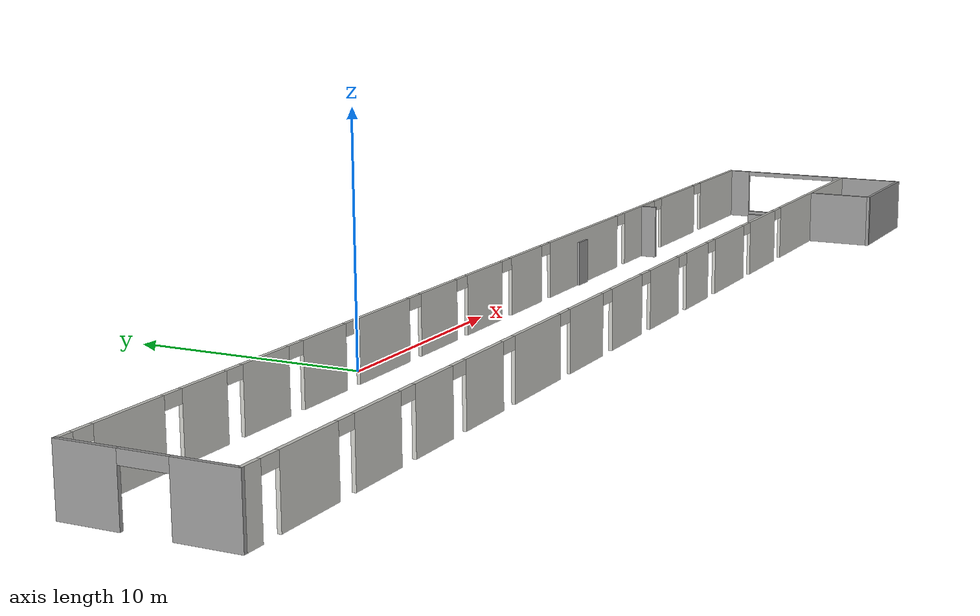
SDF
<?xml version='1.0'?>
<sdf version='1.7'>
  <model name='Pasillo_Telematica'>
    <pose>10.2077 -5.2353 0 0 -0 0</pose>
    <link name='Door_14'>
      <collision name='Door_14_Collision'>
        <geometry>
          <box>
            <size>0.9 0.17 2</size>
          </box>
        </geometry>
        <pose>0 0 1 0 -0 0</pose>
      </collision>
      <visual name='Door_14_Visual'>
        <pose>0 0 1 0 -0 0</pose>
        <geometry>
          <box>
            <size>0.9 0.17 2</size>
          </box>
        </geometry>
        <material>
          <script>
            <uri>file://media/materials/scripts/gazebo.material</uri>
            <name>Gazebo/Grey</name>
          </script>
        </material>
      </visual>
      <pose>7.85321 4.19096 0 0 -0 0</pose>
    </link>
    <link name='Wall_13'>
      <collision name='Wall_13_Collision'>
        <geometry>
          <box>
            <size>0.75 0.15 2.5</size>
          </box>
        </geometry>
        <pose>0 0 1.25 0 -0 0</pose>
      </collision>
      <visual name='Wall_13_Visual'>
        <pose>0 0 1.25 0 -0 0</pose>
        <geometry>
          <box>
            <size>0.75 0.15 2.5</size>
          </box>
        </geometry>
        <material>
          <script>
            <uri>file://media/materials/scripts/gazebo.material</uri>
            <name>Gazebo/Grey</name>
          </script>
          <ambient>1 1 1 1</ambient>
        </material>
        <meta>
          <layer>0</layer>
        </meta>
      </visual>
      <pose>15.2075 -1.6766 0 0 -0 1.5708</pose>
    </link>
    <link name='Wall_23'>
      <collision name='Wall_23_Collision'>
        <geometry>
          <box>
            <size>3.25 0.15 2.5</size>
          </box>
        </geometry>
        <pose>0 0 1.25 0 -0 0</pose>
      </collision>
      <visual name='Wall_23_Visual'>
        <pose>0 0 1.25 0 -0 0</pose>
        <geometry>
          <box>
            <size>3.25 0.15 2.5</size>
          </box>
        </geometry>
        <material>
          <script>
            <uri>file://media/materials/scripts/gazebo.material</uri>
            <name>Gazebo/Grey</name>
          </script>
          <ambient>1 1 1 1</ambient>
        </material>
        <meta>
          <layer>0</layer>
        </meta>
      </visual>
      <pose>28.175 -3.6103 0 0 -0 -1.5708</pose>
    </link>
    <link name='Wall_24'>
      <collision name='Wall_24_Collision'>
        <geometry>
          <box>
            <size>5.75 0.15 2.5</size>
          </box>
        </geometry>
        <pose>0 0 1.25 0 -0 0</pose>
      </collision>
      <visual name='Wall_24_Visual'>
        <pose>0 0 1.25 0 -0 0</pose>
        <geometry>
          <box>
            <size>5.75 0.15 2.5</size>
          </box>
        </geometry>
        <material>
          <script>
            <uri>file://media/materials/scripts/gazebo.material</uri>
            <name>Gazebo/Grey</name>
          </script>
          <ambient>1 1 1 1</ambient>
        </material>
        <meta>
          <layer>0</layer>
        </meta>
      </visual>
      <pose>25.375 -5.1603 0 0 -0 3.14159</pose>
    </link>
    <link name='Wall_25'>
      <collision name='Wall_25_Collision'>
        <geometry>
          <box>
            <size>3.25 0.15 2.5</size>
          </box>
        </geometry>
        <pose>0 0 1.25 0 -0 0</pose>
      </collision>
      <visual name='Wall_25_Visual'>
        <pose>0 0 1.25 0 -0 0</pose>
        <geometry>
          <box>
            <size>3.25 0.15 2.5</size>
          </box>
        </geometry>
        <material>
          <script>
            <uri>file://media/materials/scripts/gazebo.material</uri>
            <name>Gazebo/Grey</name>
          </script>
          <ambient>1 1 1 1</ambient>
        </material>
        <meta>
          <layer>0</layer>
        </meta>
      </visual>
      <pose>22.575 -3.6103 0 0 -0 1.5708</pose>
    </link>
    <link name='Wall_3'>
      <pose>-1e-06 -2.0603 0 0 -0 0</pose>
      <visual name='Wall_3_Visual_0'>
        <pose>-27.785 0 1.25 0 -0 0</pose>
        <geometry>
          <box>
            <size>0.929953 0.15 2.5</size>
          </box>
        </geometry>
        <material>
          <script>
            <uri>file://media/materials/scripts/gazebo.material</uri>
            <name>Gazebo/CeilingTiled</name>
          </script>
          <ambient>1 1 1 1</ambient>
        </material>
        <meta>
          <layer>0</layer>
        </meta>
      </visual>
      <collision name='Wall_3_Collision_0'>
        <geometry>
          <box>
            <size>0.929953 0.15 2.5</size>
          </box>
        </geometry>
        <pose>-27.785 0 1.25 0 -0 0</pose>
      </collision>
      <visual name='Wall_3_Visual_1'>
        <pose>-24.8637 0 1.25 0 -0 0</pose>
        <geometry>
          <box>
            <size>3.11269 0.15 2.5</size>
          </box>
        </geometry>
        <material>
          <script>
            <uri>file://media/materials/scripts/gazebo.material</uri>
            <name>Gazebo/CeilingTiled</name>
          </script>
          <ambient>1 1 1 1</ambient>
        </material>
        <meta>
          <layer>0</layer>
        </meta>
      </visual>
      <collision name='Wall_3_Collision_1'>
        <geometry>
          <box>
            <size>3.11269 0.15 2.5</size>
          </box>
        </geometry>
        <pose>-24.8637 0 1.25 0 -0 0</pose>
      </collision>
      <visual name='Wall_3_Visual_2'>
        <pose>-21.0249 0 1.25 0 -0 0</pose>
        <geometry>
          <box>
            <size>2.76492 0.15 2.5</size>
          </box>
        </geometry>
        <material>
          <script>
            <uri>file://media/materials/scripts/gazebo.material</uri>
            <name>Gazebo/CeilingTiled</name>
          </script>
          <ambient>1 1 1 1</ambient>
        </material>
        <meta>
          <layer>0</layer>
        </meta>
      </visual>
      <collision name='Wall_3_Collision_2'>
        <geometry>
          <box>
            <size>2.76492 0.15 2.5</size>
          </box>
        </geometry>
        <pose>-21.0249 0 1.25 0 -0 0</pose>
      </collision>
      <visual name='Wall_3_Visual_3'>
        <pose>-17.4937 0 1.25 0 -0 0</pose>
        <geometry>
          <box>
            <size>2.49741 0.15 2.5</size>
          </box>
        </geometry>
        <material>
          <script>
            <uri>file://media/materials/scripts/gazebo.material</uri>
            <name>Gazebo/CeilingTiled</name>
          </script>
          <ambient>1 1 1 1</ambient>
        </material>
        <meta>
          <layer>0</layer>
        </meta>
      </visual>
      <collision name='Wall_3_Collision_3'>
        <geometry>
          <box>
            <size>2.49741 0.15 2.5</size>
          </box>
        </geometry>
        <pose>-17.4937 0 1.25 0 -0 0</pose>
      </collision>
      <visual name='Wall_3_Visual_4'>
        <pose>-13.9626 0 1.25 0 -0 0</pose>
        <geometry>
          <box>
            <size>2.76492 0.15 2.5</size>
          </box>
        </geometry>
        <material>
          <script>
            <uri>file://media/materials/scripts/gazebo.material</uri>
            <name>Gazebo/CeilingTiled</name>
          </script>
          <ambient>1 1 1 1</ambient>
        </material>
        <meta>
          <layer>0</layer>
        </meta>
      </visual>
      <collision name='Wall_3_Collision_4'>
        <geometry>
          <box>
            <size>2.76492 0.15 2.5</size>
          </box>
        </geometry>
        <pose>-13.9626 0 1.25 0 -0 0</pose>
      </collision>
      <visual name='Wall_3_Visual_5'>
        <pose>-9.81612 0 1.25 0 -0 0</pose>
        <geometry>
          <box>
            <size>3.72797 0.15 2.5</size>
          </box>
        </geometry>
        <material>
          <script>
            <uri>file://media/materials/scripts/gazebo.material</uri>
            <name>Gazebo/CeilingTiled</name>
          </script>
          <ambient>1 1 1 1</ambient>
        </material>
        <meta>
          <layer>0</layer>
        </meta>
      </visual>
      <collision name='Wall_3_Collision_5'>
        <geometry>
          <box>
            <size>3.72797 0.15 2.5</size>
          </box>
        </geometry>
        <pose>-9.81612 0 1.25 0 -0 0</pose>
      </collision>
      <visual name='Wall_3_Visual_6'>
        <pose>-5.5493 0 1.25 0 -0 0</pose>
        <geometry>
          <box>
            <size>3.00568 0.15 2.5</size>
          </box>
        </geometry>
        <material>
          <script>
            <uri>file://media/materials/scripts/gazebo.material</uri>
            <name>Gazebo/CeilingTiled</name>
          </script>
          <ambient>1 1 1 1</ambient>
        </material>
        <meta>
          <layer>0</layer>
        </meta>
      </visual>
      <collision name='Wall_3_Collision_6'>
        <geometry>
          <box>
            <size>3.00568 0.15 2.5</size>
          </box>
        </geometry>
        <pose>-5.5493 0 1.25 0 -0 0</pose>
      </collision>
      <visual name='Wall_3_Visual_7'>
        <pose>-1.63024 0 1.25 0 -0 0</pose>
        <geometry>
          <box>
            <size>3.03243 0.15 2.5</size>
          </box>
        </geometry>
        <material>
          <script>
            <uri>file://media/materials/scripts/gazebo.material</uri>
            <name>Gazebo/CeilingTiled</name>
          </script>
          <ambient>1 1 1 1</ambient>
        </material>
        <meta>
          <layer>0</layer>
        </meta>
      </visual>
      <collision name='Wall_3_Collision_7'>
        <geometry>
          <box>
            <size>3.03243 0.15 2.5</size>
          </box>
        </geometry>
        <pose>-1.63024 0 1.25 0 -0 0</pose>
      </collision>
      <visual name='Wall_3_Visual_8'>
        <pose>2.36907 0 1.25 0 -0 0</pose>
        <geometry>
          <box>
            <size>3.16619 0.15 2.5</size>
          </box>
        </geometry>
        <material>
          <script>
            <uri>file://media/materials/scripts/gazebo.material</uri>
            <name>Gazebo/CeilingTiled</name>
          </script>
          <ambient>1 1 1 1</ambient>
        </material>
        <meta>
          <layer>0</layer>
        </meta>
      </visual>
      <collision name='Wall_3_Collision_8'>
        <geometry>
          <box>
            <size>3.16619 0.15 2.5</size>
          </box>
        </geometry>
        <pose>2.36907 0 1.25 0 -0 0</pose>
      </collision>
      <visual name='Wall_3_Visual_9'>
        <pose>6.18112 0 1.25 0 -0 0</pose>
        <geometry>
          <box>
            <size>2.65792 0.15 2.5</size>
          </box>
        </geometry>
        <material>
          <script>
            <uri>file://media/materials/scripts/gazebo.material</uri>
            <name>Gazebo/CeilingTiled</name>
          </script>
          <ambient>1 1 1 1</ambient>
        </material>
        <meta>
          <layer>0</layer>
        </meta>
      </visual>
      <collision name='Wall_3_Collision_9'>
        <geometry>
          <box>
            <size>2.65792 0.15 2.5</size>
          </box>
        </geometry>
        <pose>6.18112 0 1.25 0 -0 0</pose>
      </collision>
      <visual name='Wall_3_Visual_10'>
        <pose>10.3098 0 1.25 0 -0 0</pose>
        <geometry>
          <box>
            <size>3.7995 0.15 2.5</size>
          </box>
        </geometry>
        <material>
          <script>
            <uri>file://media/materials/scripts/gazebo.material</uri>
            <name>Gazebo/CeilingTiled</name>
          </script>
          <ambient>1 1 1 1</ambient>
        </material>
        <meta>
          <layer>0</layer>
        </meta>
      </visual>
      <collision name='Wall_3_Collision_10'>
        <geometry>
          <box>
            <size>3.7995 0.15 2.5</size>
          </box>
        </geometry>
        <pose>10.3098 0 1.25 0 -0 0</pose>
      </collision>
      <visual name='Wall_3_Visual_11'>
        <pose>14.8973 0 1.25 0 -0 0</pose>
        <geometry>
          <box>
            <size>3.57538 0.15 2.5</size>
          </box>
        </geometry>
        <material>
          <script>
            <uri>file://media/materials/scripts/gazebo.material</uri>
            <name>Gazebo/CeilingTiled</name>
          </script>
          <ambient>1 1 1 1</ambient>
        </material>
        <meta>
          <layer>0</layer>
        </meta>
      </visual>
      <collision name='Wall_3_Collision_11'>
        <geometry>
          <box>
            <size>3.57538 0.15 2.5</size>
          </box>
        </geometry>
        <pose>14.8973 0 1.25 0 -0 0</pose>
      </collision>
      <visual name='Wall_3_Visual_12'>
        <pose>22.9175 0 1.25 0 -0 0</pose>
        <geometry>
          <box>
            <size>10.665 0.15 2.5</size>
          </box>
        </geometry>
        <material>
          <script>
            <uri>file://media/materials/scripts/gazebo.material</uri>
            <name>Gazebo/CeilingTiled</name>
          </script>
          <ambient>1 1 1 1</ambient>
        </material>
        <meta>
          <layer>0</layer>
        </meta>
      </visual>
      <collision name='Wall_3_Collision_12'>
        <geometry>
          <box>
            <size>10.665 0.15 2.5</size>
          </box>
        </geometry>
        <pose>22.9175 0 1.25 0 -0 0</pose>
      </collision>
      <visual name='Wall_3_Visual_13'>
        <pose>-26.87 0 2.25 0 -0 0</pose>
        <geometry>
          <box>
            <size>0.9 0.15 0.5</size>
          </box>
        </geometry>
        <material>
          <script>
            <uri>file://media/materials/scripts/gazebo.material</uri>
            <name>Gazebo/CeilingTiled</name>
          </script>
          <ambient>1 1 1 1</ambient>
        </material>
        <meta>
          <layer>0</layer>
        </meta>
      </visual>
      <collision name='Wall_3_Collision_13'>
        <geometry>
          <box>
            <size>0.9 0.15 0.5</size>
          </box>
        </geometry>
        <pose>-26.87 0 2.25 0 -0 0</pose>
      </collision>
      <visual name='Wall_3_Visual_14'>
        <pose>-22.8574 0 2.25 0 -0 0</pose>
        <geometry>
          <box>
            <size>0.9 0.15 0.5</size>
          </box>
        </geometry>
        <material>
          <script>
            <uri>file://media/materials/scripts/gazebo.material</uri>
            <name>Gazebo/CeilingTiled</name>
          </script>
          <ambient>1 1 1 1</ambient>
        </material>
        <meta>
          <layer>0</layer>
        </meta>
      </visual>
      <collision name='Wall_3_Collision_14'>
        <geometry>
          <box>
            <size>0.9 0.15 0.5</size>
          </box>
        </geometry>
        <pose>-22.8574 0 2.25 0 -0 0</pose>
      </collision>
      <visual name='Wall_3_Visual_15'>
        <pose>-19.1924 0 2.25 0 -0 0</pose>
        <geometry>
          <box>
            <size>0.9 0.15 0.5</size>
          </box>
        </geometry>
        <material>
          <script>
            <uri>file://media/materials/scripts/gazebo.material</uri>
            <name>Gazebo/CeilingTiled</name>
          </script>
          <ambient>1 1 1 1</ambient>
        </material>
        <meta>
          <layer>0</layer>
        </meta>
      </visual>
      <collision name='Wall_3_Collision_15'>
        <geometry>
          <box>
            <size>0.9 0.15 0.5</size>
          </box>
        </geometry>
        <pose>-19.1924 0 2.25 0 -0 0</pose>
      </collision>
      <visual name='Wall_3_Visual_16'>
        <pose>-15.795 0 2.25 0 -0 0</pose>
        <geometry>
          <box>
            <size>0.9 0.15 0.5</size>
          </box>
        </geometry>
        <material>
          <script>
            <uri>file://media/materials/scripts/gazebo.material</uri>
            <name>Gazebo/CeilingTiled</name>
          </script>
          <ambient>1 1 1 1</ambient>
        </material>
        <meta>
          <layer>0</layer>
        </meta>
      </visual>
      <collision name='Wall_3_Collision_16'>
        <geometry>
          <box>
            <size>0.9 0.15 0.5</size>
          </box>
        </geometry>
        <pose>-15.795 0 2.25 0 -0 0</pose>
      </collision>
      <visual name='Wall_3_Visual_17'>
        <pose>-12.1301 0 2.25 0 -0 0</pose>
        <geometry>
          <box>
            <size>0.9 0.15 0.5</size>
          </box>
        </geometry>
        <material>
          <script>
            <uri>file://media/materials/scripts/gazebo.material</uri>
            <name>Gazebo/CeilingTiled</name>
          </script>
          <ambient>1 1 1 1</ambient>
        </material>
        <meta>
          <layer>0</layer>
        </meta>
      </visual>
      <collision name='Wall_3_Collision_17'>
        <geometry>
          <box>
            <size>0.9 0.15 0.5</size>
          </box>
        </geometry>
        <pose>-12.1301 0 2.25 0 -0 0</pose>
      </collision>
      <visual name='Wall_3_Visual_18'>
        <pose>-7.50214 0 2.25 0 -0 0</pose>
        <geometry>
          <box>
            <size>0.9 0.15 0.5</size>
          </box>
        </geometry>
        <material>
          <script>
            <uri>file://media/materials/scripts/gazebo.material</uri>
            <name>Gazebo/CeilingTiled</name>
          </script>
          <ambient>1 1 1 1</ambient>
        </material>
        <meta>
          <layer>0</layer>
        </meta>
      </visual>
      <collision name='Wall_3_Collision_18'>
        <geometry>
          <box>
            <size>0.9 0.15 0.5</size>
          </box>
        </geometry>
        <pose>-7.50214 0 2.25 0 -0 0</pose>
      </collision>
      <visual name='Wall_3_Visual_19'>
        <pose>-3.59646 0 2.25 0 -0 0</pose>
        <geometry>
          <box>
            <size>0.9 0.15 0.5</size>
          </box>
        </geometry>
        <material>
          <script>
            <uri>file://media/materials/scripts/gazebo.material</uri>
            <name>Gazebo/CeilingTiled</name>
          </script>
          <ambient>1 1 1 1</ambient>
        </material>
        <meta>
          <layer>0</layer>
        </meta>
      </visual>
      <collision name='Wall_3_Collision_19'>
        <geometry>
          <box>
            <size>0.9 0.15 0.5</size>
          </box>
        </geometry>
        <pose>-3.59646 0 2.25 0 -0 0</pose>
      </collision>
      <visual name='Wall_3_Visual_20'>
        <pose>0.335975 0 2.25 0 -0 0</pose>
        <geometry>
          <box>
            <size>0.9 0.15 0.5</size>
          </box>
        </geometry>
        <material>
          <script>
            <uri>file://media/materials/scripts/gazebo.material</uri>
            <name>Gazebo/CeilingTiled</name>
          </script>
          <ambient>1 1 1 1</ambient>
        </material>
        <meta>
          <layer>0</layer>
        </meta>
      </visual>
      <collision name='Wall_3_Collision_20'>
        <geometry>
          <box>
            <size>0.9 0.15 0.5</size>
          </box>
        </geometry>
        <pose>0.335975 0 2.25 0 -0 0</pose>
      </collision>
      <visual name='Wall_3_Visual_21'>
        <pose>4.40217 0 2.25 0 -0 0</pose>
        <geometry>
          <box>
            <size>0.9 0.15 0.5</size>
          </box>
        </geometry>
        <material>
          <script>
            <uri>file://media/materials/scripts/gazebo.material</uri>
            <name>Gazebo/CeilingTiled</name>
          </script>
          <ambient>1 1 1 1</ambient>
        </material>
        <meta>
          <layer>0</layer>
        </meta>
      </visual>
      <collision name='Wall_3_Collision_21'>
        <geometry>
          <box>
            <size>0.9 0.15 0.5</size>
          </box>
        </geometry>
        <pose>4.40217 0 2.25 0 -0 0</pose>
      </collision>
      <visual name='Wall_3_Visual_22'>
        <pose>7.96008 0 2.25 0 -0 0</pose>
        <geometry>
          <box>
            <size>0.9 0.15 0.5</size>
          </box>
        </geometry>
        <material>
          <script>
            <uri>file://media/materials/scripts/gazebo.material</uri>
            <name>Gazebo/CeilingTiled</name>
          </script>
          <ambient>1 1 1 1</ambient>
        </material>
        <meta>
          <layer>0</layer>
        </meta>
      </visual>
      <collision name='Wall_3_Collision_22'>
        <geometry>
          <box>
            <size>0.9 0.15 0.5</size>
          </box>
        </geometry>
        <pose>7.96008 0 2.25 0 -0 0</pose>
      </collision>
      <visual name='Wall_3_Visual_23'>
        <pose>12.6596 0 2.25 0 -0 0</pose>
        <geometry>
          <box>
            <size>0.9 0.15 0.5</size>
          </box>
        </geometry>
        <material>
          <script>
            <uri>file://media/materials/scripts/gazebo.material</uri>
            <name>Gazebo/CeilingTiled</name>
          </script>
          <ambient>1 1 1 1</ambient>
        </material>
        <meta>
          <layer>0</layer>
        </meta>
      </visual>
      <collision name='Wall_3_Collision_23'>
        <geometry>
          <box>
            <size>0.9 0.15 0.5</size>
          </box>
        </geometry>
        <pose>12.6596 0 2.25 0 -0 0</pose>
      </collision>
      <visual name='Wall_3_Visual_24'>
        <pose>17.135 0 2.25 0 -0 0</pose>
        <geometry>
          <box>
            <size>0.9 0.15 0.5</size>
          </box>
        </geometry>
        <material>
          <script>
            <uri>file://media/materials/scripts/gazebo.material</uri>
            <name>Gazebo/CeilingTiled</name>
          </script>
          <ambient>1 1 1 1</ambient>
        </material>
        <meta>
          <layer>0</layer>
        </meta>
      </visual>
      <collision name='Wall_3_Collision_24'>
        <geometry>
          <box>
            <size>0.9 0.15 0.5</size>
          </box>
        </geometry>
        <pose>17.135 0 2.25 0 -0 0</pose>
      </collision>
    </link>
    <link name='Wall_5'>
      <pose>-28.175 1.1147 0 0 -0 1.5708</pose>
      <visual name='Wall_5_Visual_0'>
        <pose>-2.04976 0 1.25 0 -0 0</pose>
        <geometry>
          <box>
            <size>2.40049 0.15 2.5</size>
          </box>
        </geometry>
        <material>
          <script>
            <uri>file://media/materials/scripts/gazebo.material</uri>
            <name>Gazebo/Grey</name>
          </script>
          <ambient>1 1 1 1</ambient>
        </material>
        <meta>
          <layer>0</layer>
        </meta>
      </visual>
      <collision name='Wall_5_Collision_0'>
        <geometry>
          <box>
            <size>2.40049 0.15 2.5</size>
          </box>
        </geometry>
        <pose>-2.04976 0 1.25 0 -0 0</pose>
      </collision>
      <visual name='Wall_5_Visual_1'>
        <pose>2.10824 0 1.25 0 -0 0</pose>
        <geometry>
          <box>
            <size>2.28351 0.15 2.5</size>
          </box>
        </geometry>
        <material>
          <script>
            <uri>file://media/materials/scripts/gazebo.material</uri>
            <name>Gazebo/Grey</name>
          </script>
          <ambient>1 1 1 1</ambient>
        </material>
        <meta>
          <layer>0</layer>
        </meta>
      </visual>
      <collision name='Wall_5_Collision_1'>
        <geometry>
          <box>
            <size>2.28351 0.15 2.5</size>
          </box>
        </geometry>
        <pose>2.10824 0 1.25 0 -0 0</pose>
      </collision>
      <visual name='Wall_5_Visual_2'>
        <pose>0.058486 0 2.24975 0 -0 0</pose>
        <geometry>
          <box>
            <size>1.816 0.15 0.5005</size>
          </box>
        </geometry>
        <material>
          <script>
            <uri>file://media/materials/scripts/gazebo.material</uri>
            <name>Gazebo/Grey</name>
          </script>
          <ambient>1 1 1 1</ambient>
        </material>
        <meta>
          <layer>0</layer>
        </meta>
      </visual>
      <collision name='Wall_5_Collision_2'>
        <geometry>
          <box>
            <size>1.816 0.15 0.5005</size>
          </box>
        </geometry>
        <pose>0.058486 0 2.24975 0 -0 0</pose>
      </collision>
    </link>
    <link name='Wall_6'>
      <pose>-1e-06 4.2897 0 0 -0 0</pose>
      <visual name='Wall_6_Visual_0'>
        <pose>-27.8774 0 1.25 0 -0 0</pose>
        <geometry>
          <box>
            <size>0.745215 0.15 2.5</size>
          </box>
        </geometry>
        <material>
          <script>
            <uri>file://media/materials/scripts/gazebo.material</uri>
            <name>Gazebo/CeilingTiled</name>
          </script>
          <ambient>1 1 1 1</ambient>
        </material>
        <meta>
          <layer>0</layer>
        </meta>
      </visual>
      <collision name='Wall_6_Collision_0'>
        <geometry>
          <box>
            <size>0.745215 0.15 2.5</size>
          </box>
        </geometry>
        <pose>-27.8774 0 1.25 0 -0 0</pose>
      </collision>
      <visual name='Wall_6_Visual_1'>
        <pose>-24.9188 0 1.25 0 -0 0</pose>
        <geometry>
          <box>
            <size>3.37196 0.15 2.5</size>
          </box>
        </geometry>
        <material>
          <script>
            <uri>file://media/materials/scripts/gazebo.material</uri>
            <name>Gazebo/CeilingTiled</name>
          </script>
          <ambient>1 1 1 1</ambient>
        </material>
        <meta>
          <layer>0</layer>
        </meta>
      </visual>
      <collision name='Wall_6_Collision_1'>
        <geometry>
          <box>
            <size>3.37196 0.15 2.5</size>
          </box>
        </geometry>
        <pose>-24.9188 0 1.25 0 -0 0</pose>
      </collision>
      <visual name='Wall_6_Visual_2'>
        <pose>-21.1351 0 1.25 0 -0 0</pose>
        <geometry>
          <box>
            <size>2.39551 0.15 2.5</size>
          </box>
        </geometry>
        <material>
          <script>
            <uri>file://media/materials/scripts/gazebo.material</uri>
            <name>Gazebo/CeilingTiled</name>
          </script>
          <ambient>1 1 1 1</ambient>
        </material>
        <meta>
          <layer>0</layer>
        </meta>
      </visual>
      <collision name='Wall_6_Collision_2'>
        <geometry>
          <box>
            <size>2.39551 0.15 2.5</size>
          </box>
        </geometry>
        <pose>-21.1351 0 1.25 0 -0 0</pose>
      </collision>
      <visual name='Wall_6_Visual_3'>
        <pose>-17.6768 0 1.25 0 -0 0</pose>
        <geometry>
          <box>
            <size>2.72099 0.15 2.5</size>
          </box>
        </geometry>
        <material>
          <script>
            <uri>file://media/materials/scripts/gazebo.material</uri>
            <name>Gazebo/CeilingTiled</name>
          </script>
          <ambient>1 1 1 1</ambient>
        </material>
        <meta>
          <layer>0</layer>
        </meta>
      </visual>
      <collision name='Wall_6_Collision_3'>
        <geometry>
          <box>
            <size>2.72099 0.15 2.5</size>
          </box>
        </geometry>
        <pose>-17.6768 0 1.25 0 -0 0</pose>
      </collision>
      <visual name='Wall_6_Visual_4'>
        <pose>-14.0151 0 1.25 0 -0 0</pose>
        <geometry>
          <box>
            <size>2.80236 0.15 2.5</size>
          </box>
        </geometry>
        <material>
          <script>
            <uri>file://media/materials/scripts/gazebo.material</uri>
            <name>Gazebo/CeilingTiled</name>
          </script>
          <ambient>1 1 1 1</ambient>
        </material>
        <meta>
          <layer>0</layer>
        </meta>
      </visual>
      <collision name='Wall_6_Collision_4'>
        <geometry>
          <box>
            <size>2.80236 0.15 2.5</size>
          </box>
        </geometry>
        <pose>-14.0151 0 1.25 0 -0 0</pose>
      </collision>
      <visual name='Wall_6_Visual_5'>
        <pose>-9.86524 0 1.25 0 -0 0</pose>
        <geometry>
          <box>
            <size>3.69744 0.15 2.5</size>
          </box>
        </geometry>
        <material>
          <script>
            <uri>file://media/materials/scripts/gazebo.material</uri>
            <name>Gazebo/CeilingTiled</name>
          </script>
          <ambient>1 1 1 1</ambient>
        </material>
        <meta>
          <layer>0</layer>
        </meta>
      </visual>
      <collision name='Wall_6_Collision_5'>
        <geometry>
          <box>
            <size>3.69744 0.15 2.5</size>
          </box>
        </geometry>
        <pose>-9.86524 0 1.25 0 -0 0</pose>
      </collision>
      <visual name='Wall_6_Visual_6'>
        <pose>-5.65431 0 1.25 0 -0 0</pose>
        <geometry>
          <box>
            <size>2.92442 0.15 2.5</size>
          </box>
        </geometry>
        <material>
          <script>
            <uri>file://media/materials/scripts/gazebo.material</uri>
            <name>Gazebo/CeilingTiled</name>
          </script>
          <ambient>1 1 1 1</ambient>
        </material>
        <meta>
          <layer>0</layer>
        </meta>
      </visual>
      <collision name='Wall_6_Collision_6'>
        <geometry>
          <box>
            <size>2.92442 0.15 2.5</size>
          </box>
        </geometry>
        <pose>-5.65431 0 1.25 0 -0 0</pose>
      </collision>
      <visual name='Wall_6_Visual_7'>
        <pose>-1.74852 0 1.25 0 -0 0</pose>
        <geometry>
          <box>
            <size>3.08716 0.15 2.5</size>
          </box>
        </geometry>
        <material>
          <script>
            <uri>file://media/materials/scripts/gazebo.material</uri>
            <name>Gazebo/CeilingTiled</name>
          </script>
          <ambient>1 1 1 1</ambient>
        </material>
        <meta>
          <layer>0</layer>
        </meta>
      </visual>
      <collision name='Wall_6_Collision_7'>
        <geometry>
          <box>
            <size>3.08716 0.15 2.5</size>
          </box>
        </geometry>
        <pose>-1.74852 0 1.25 0 -0 0</pose>
      </collision>
      <visual name='Wall_6_Visual_8'>
        <pose>2.15727 0 1.25 0 -0 0</pose>
        <geometry>
          <box>
            <size>2.92442 0.15 2.5</size>
          </box>
        </geometry>
        <material>
          <script>
            <uri>file://media/materials/scripts/gazebo.material</uri>
            <name>Gazebo/CeilingTiled</name>
          </script>
          <ambient>1 1 1 1</ambient>
        </material>
        <meta>
          <layer>0</layer>
        </meta>
      </visual>
      <collision name='Wall_6_Collision_8'>
        <geometry>
          <box>
            <size>2.92442 0.15 2.5</size>
          </box>
        </geometry>
        <pose>2.15727 0 1.25 0 -0 0</pose>
      </collision>
      <visual name='Wall_6_Visual_9'>
        <pose>8.26006 0 1.25 0 -0 0</pose>
        <geometry>
          <box>
            <size>7.48117 0.15 2.5</size>
          </box>
        </geometry>
        <material>
          <script>
            <uri>file://media/materials/scripts/gazebo.material</uri>
            <name>Gazebo/CeilingTiled</name>
          </script>
          <ambient>1 1 1 1</ambient>
        </material>
        <meta>
          <layer>0</layer>
        </meta>
      </visual>
      <collision name='Wall_6_Collision_9'>
        <geometry>
          <box>
            <size>7.48117 0.15 2.5</size>
          </box>
        </geometry>
        <pose>8.26006 0 1.25 0 -0 0</pose>
      </collision>
      <visual name='Wall_6_Visual_10'>
        <pose>14.8104 0 1.25 0 -0 0</pose>
        <geometry>
          <box>
            <size>3.8195 0.15 2.5</size>
          </box>
        </geometry>
        <material>
          <script>
            <uri>file://media/materials/scripts/gazebo.material</uri>
            <name>Gazebo/CeilingTiled</name>
          </script>
          <ambient>1 1 1 1</ambient>
        </material>
        <meta>
          <layer>0</layer>
        </meta>
      </visual>
      <collision name='Wall_6_Collision_10'>
        <geometry>
          <box>
            <size>3.8195 0.15 2.5</size>
          </box>
        </geometry>
        <pose>14.8104 0 1.25 0 -0 0</pose>
      </collision>
      <visual name='Wall_6_Visual_11'>
        <pose>19.9367 0 1.25 0 -0 0</pose>
        <geometry>
          <box>
            <size>4.6332 0.15 2.5</size>
          </box>
        </geometry>
        <material>
          <script>
            <uri>file://media/materials/scripts/gazebo.material</uri>
            <name>Gazebo/CeilingTiled</name>
          </script>
          <ambient>1 1 1 1</ambient>
        </material>
        <meta>
          <layer>0</layer>
        </meta>
      </visual>
      <collision name='Wall_6_Collision_11'>
        <geometry>
          <box>
            <size>4.6332 0.15 2.5</size>
          </box>
        </geometry>
        <pose>19.9367 0 1.25 0 -0 0</pose>
      </collision>
      <visual name='Wall_6_Visual_12'>
        <pose>25.7017 0 1.25 0 -0 0</pose>
        <geometry>
          <box>
            <size>5.09665 0.15 2.5</size>
          </box>
        </geometry>
        <material>
          <script>
            <uri>file://media/materials/scripts/gazebo.material</uri>
            <name>Gazebo/CeilingTiled</name>
          </script>
          <ambient>1 1 1 1</ambient>
        </material>
        <meta>
          <layer>0</layer>
        </meta>
      </visual>
      <collision name='Wall_6_Collision_12'>
        <geometry>
          <box>
            <size>5.09665 0.15 2.5</size>
          </box>
        </geometry>
        <pose>25.7017 0 1.25 0 -0 0</pose>
      </collision>
      <visual name='Wall_6_Visual_13'>
        <pose>-27.0548 0 2.25 0 -0 0</pose>
        <geometry>
          <box>
            <size>0.9 0.15 0.5</size>
          </box>
        </geometry>
        <material>
          <script>
            <uri>file://media/materials/scripts/gazebo.material</uri>
            <name>Gazebo/CeilingTiled</name>
          </script>
          <ambient>1 1 1 1</ambient>
        </material>
        <meta>
          <layer>0</layer>
        </meta>
      </visual>
      <collision name='Wall_6_Collision_13'>
        <geometry>
          <box>
            <size>0.9 0.15 0.5</size>
          </box>
        </geometry>
        <pose>-27.0548 0 2.25 0 -0 0</pose>
      </collision>
      <visual name='Wall_6_Visual_14'>
        <pose>-22.7828 0 2.25 0 -0 0</pose>
        <geometry>
          <box>
            <size>0.9 0.15 0.5</size>
          </box>
        </geometry>
        <material>
          <script>
            <uri>file://media/materials/scripts/gazebo.material</uri>
            <name>Gazebo/CeilingTiled</name>
          </script>
          <ambient>1 1 1 1</ambient>
        </material>
        <meta>
          <layer>0</layer>
        </meta>
      </visual>
      <collision name='Wall_6_Collision_14'>
        <geometry>
          <box>
            <size>0.9 0.15 0.5</size>
          </box>
        </geometry>
        <pose>-22.7828 0 2.25 0 -0 0</pose>
      </collision>
      <visual name='Wall_6_Visual_15'>
        <pose>-19.4873 0 2.25 0 -0 0</pose>
        <geometry>
          <box>
            <size>0.9 0.15 0.5</size>
          </box>
        </geometry>
        <material>
          <script>
            <uri>file://media/materials/scripts/gazebo.material</uri>
            <name>Gazebo/CeilingTiled</name>
          </script>
          <ambient>1 1 1 1</ambient>
        </material>
        <meta>
          <layer>0</layer>
        </meta>
      </visual>
      <collision name='Wall_6_Collision_15'>
        <geometry>
          <box>
            <size>0.9 0.15 0.5</size>
          </box>
        </geometry>
        <pose>-19.4873 0 2.25 0 -0 0</pose>
      </collision>
      <visual name='Wall_6_Visual_16'>
        <pose>-15.8663 0 2.25 0 -0 0</pose>
        <geometry>
          <box>
            <size>0.9 0.15 0.5</size>
          </box>
        </geometry>
        <material>
          <script>
            <uri>file://media/materials/scripts/gazebo.material</uri>
            <name>Gazebo/CeilingTiled</name>
          </script>
          <ambient>1 1 1 1</ambient>
        </material>
        <meta>
          <layer>0</layer>
        </meta>
      </visual>
      <collision name='Wall_6_Collision_16'>
        <geometry>
          <box>
            <size>0.9 0.15 0.5</size>
          </box>
        </geometry>
        <pose>-15.8663 0 2.25 0 -0 0</pose>
      </collision>
      <visual name='Wall_6_Visual_17'>
        <pose>-12.164 0 2.25 0 -0 0</pose>
        <geometry>
          <box>
            <size>0.9 0.15 0.5</size>
          </box>
        </geometry>
        <material>
          <script>
            <uri>file://media/materials/scripts/gazebo.material</uri>
            <name>Gazebo/CeilingTiled</name>
          </script>
          <ambient>1 1 1 1</ambient>
        </material>
        <meta>
          <layer>0</layer>
        </meta>
      </visual>
      <collision name='Wall_6_Collision_17'>
        <geometry>
          <box>
            <size>0.9 0.15 0.5</size>
          </box>
        </geometry>
        <pose>-12.164 0 2.25 0 -0 0</pose>
      </collision>
      <visual name='Wall_6_Visual_18'>
        <pose>-7.56652 0 2.25 0 -0 0</pose>
        <geometry>
          <box>
            <size>0.9 0.15 0.5</size>
          </box>
        </geometry>
        <material>
          <script>
            <uri>file://media/materials/scripts/gazebo.material</uri>
            <name>Gazebo/CeilingTiled</name>
          </script>
          <ambient>1 1 1 1</ambient>
        </material>
        <meta>
          <layer>0</layer>
        </meta>
      </visual>
      <collision name='Wall_6_Collision_18'>
        <geometry>
          <box>
            <size>0.9 0.15 0.5</size>
          </box>
        </geometry>
        <pose>-7.56652 0 2.25 0 -0 0</pose>
      </collision>
      <visual name='Wall_6_Visual_19'>
        <pose>-3.7421 0 2.25 0 -0 0</pose>
        <geometry>
          <box>
            <size>0.9 0.15 0.5</size>
          </box>
        </geometry>
        <material>
          <script>
            <uri>file://media/materials/scripts/gazebo.material</uri>
            <name>Gazebo/CeilingTiled</name>
          </script>
          <ambient>1 1 1 1</ambient>
        </material>
        <meta>
          <layer>0</layer>
        </meta>
      </visual>
      <collision name='Wall_6_Collision_19'>
        <geometry>
          <box>
            <size>0.9 0.15 0.5</size>
          </box>
        </geometry>
        <pose>-3.7421 0 2.25 0 -0 0</pose>
      </collision>
      <visual name='Wall_6_Visual_20'>
        <pose>0.245056 0 2.25 0 -0 0</pose>
        <geometry>
          <box>
            <size>0.9 0.15 0.5</size>
          </box>
        </geometry>
        <material>
          <script>
            <uri>file://media/materials/scripts/gazebo.material</uri>
            <name>Gazebo/CeilingTiled</name>
          </script>
          <ambient>1 1 1 1</ambient>
        </material>
        <meta>
          <layer>0</layer>
        </meta>
      </visual>
      <collision name='Wall_6_Collision_20'>
        <geometry>
          <box>
            <size>0.9 0.15 0.5</size>
          </box>
        </geometry>
        <pose>0.245056 0 2.25 0 -0 0</pose>
      </collision>
      <visual name='Wall_6_Visual_21'>
        <pose>4.06947 0 2.25 0 -0 0</pose>
        <geometry>
          <box>
            <size>0.9 0.15 0.5</size>
          </box>
        </geometry>
        <material>
          <script>
            <uri>file://media/materials/scripts/gazebo.material</uri>
            <name>Gazebo/CeilingTiled</name>
          </script>
          <ambient>1 1 1 1</ambient>
        </material>
        <meta>
          <layer>0</layer>
        </meta>
      </visual>
      <collision name='Wall_6_Collision_21'>
        <geometry>
          <box>
            <size>0.9 0.15 0.5</size>
          </box>
        </geometry>
        <pose>4.06947 0 2.25 0 -0 0</pose>
      </collision>
      <visual name='Wall_6_Visual_22'>
        <pose>12.4506 0 2.25 0 -0 0</pose>
        <geometry>
          <box>
            <size>0.9 0.15 0.5</size>
          </box>
        </geometry>
        <material>
          <script>
            <uri>file://media/materials/scripts/gazebo.material</uri>
            <name>Gazebo/CeilingTiled</name>
          </script>
          <ambient>1 1 1 1</ambient>
        </material>
        <meta>
          <layer>0</layer>
        </meta>
      </visual>
      <collision name='Wall_6_Collision_22'>
        <geometry>
          <box>
            <size>0.9 0.15 0.5</size>
          </box>
        </geometry>
        <pose>12.4506 0 2.25 0 -0 0</pose>
      </collision>
      <visual name='Wall_6_Visual_23'>
        <pose>17.1701 0 2.25 0 -0 0</pose>
        <geometry>
          <box>
            <size>0.9 0.15 0.5</size>
          </box>
        </geometry>
        <material>
          <script>
            <uri>file://media/materials/scripts/gazebo.material</uri>
            <name>Gazebo/CeilingTiled</name>
          </script>
          <ambient>1 1 1 1</ambient>
        </material>
        <meta>
          <layer>0</layer>
        </meta>
      </visual>
      <collision name='Wall_6_Collision_23'>
        <geometry>
          <box>
            <size>0.9 0.15 0.5</size>
          </box>
        </geometry>
        <pose>17.1701 0 2.25 0 -0 0</pose>
      </collision>
      <visual name='Wall_6_Visual_24'>
        <pose>22.7033 0 2.25 0 -0 0</pose>
        <geometry>
          <box>
            <size>0.9 0.15 0.5</size>
          </box>
        </geometry>
        <material>
          <script>
            <uri>file://media/materials/scripts/gazebo.material</uri>
            <name>Gazebo/CeilingTiled</name>
          </script>
          <ambient>1 1 1 1</ambient>
        </material>
        <meta>
          <layer>0</layer>
        </meta>
      </visual>
      <collision name='Wall_6_Collision_24'>
        <geometry>
          <box>
            <size>0.9 0.15 0.5</size>
          </box>
        </geometry>
        <pose>22.7033 0 2.25 0 -0 0</pose>
      </collision>
    </link>
    <link name='Wall_7'>
      <pose>28.175 1.1147 0 0 -0 -1.5708</pose>
      <visual name='Wall_7_Visual_0'>
        <pose>-2.66515 0 1.25 0 -0 0</pose>
        <geometry>
          <box>
            <size>1.16969 0.15 2.5</size>
          </box>
        </geometry>
        <material>
          <script>
            <uri>file://media/materials/scripts/gazebo.material</uri>
            <name>Gazebo/Grey</name>
          </script>
          <ambient>1 1 1 1</ambient>
        </material>
        <meta>
          <layer>0</layer>
        </meta>
      </visual>
      <collision name='Wall_7_Collision_0'>
        <geometry>
          <box>
            <size>1.16969 0.15 2.5</size>
          </box>
        </geometry>
        <pose>-2.66515 0 1.25 0 -0 0</pose>
      </collision>
      <visual name='Wall_7_Visual_1'>
        <pose>0.584845 0 0.143 0 -0 0</pose>
        <geometry>
          <box>
            <size>5.33031 0.15 0.286</size>
          </box>
        </geometry>
        <material>
          <script>
            <uri>file://media/materials/scripts/gazebo.material</uri>
            <name>Gazebo/Grey</name>
          </script>
          <ambient>1 1 1 1</ambient>
        </material>
        <meta>
          <layer>0</layer>
        </meta>
      </visual>
      <collision name='Wall_7_Collision_1'>
        <geometry>
          <box>
            <size>5.33031 0.15 0.286</size>
          </box>
        </geometry>
        <pose>0.584845 0 0.143 0 -0 0</pose>
      </collision>
      <visual name='Wall_7_Visual_2'>
        <pose>2.98484 0 1.393 0 -0 0</pose>
        <geometry>
          <box>
            <size>0.53031 0.15 2.214</size>
          </box>
        </geometry>
        <material>
          <script>
            <uri>file://media/materials/scripts/gazebo.material</uri>
            <name>Gazebo/Grey</name>
          </script>
          <ambient>1 1 1 1</ambient>
        </material>
        <meta>
          <layer>0</layer>
        </meta>
      </visual>
      <collision name='Wall_7_Collision_2'>
        <geometry>
          <box>
            <size>0.53031 0.15 2.214</size>
          </box>
        </geometry>
        <pose>2.98484 0 1.393 0 -0 0</pose>
      </collision>
      <visual name='Wall_7_Visual_3'>
        <pose>0.31969 0 2.393 0 -0 0</pose>
        <geometry>
          <box>
            <size>4.8 0.15 0.214</size>
          </box>
        </geometry>
        <material>
          <script>
            <uri>file://media/materials/scripts/gazebo.material</uri>
            <name>Gazebo/Grey</name>
          </script>
          <ambient>1 1 1 1</ambient>
        </material>
        <meta>
          <layer>0</layer>
        </meta>
      </visual>
      <collision name='Wall_7_Collision_3'>
        <geometry>
          <box>
            <size>4.8 0.15 0.214</size>
          </box>
        </geometry>
        <pose>0.31969 0 2.393 0 -0 0</pose>
      </collision>
    </link>
    <link name='Wall_9'>
      <collision name='Wall_9_Collision'>
        <geometry>
          <box>
            <size>0.75 0.15 2.5</size>
          </box>
        </geometry>
        <pose>0 0 1.25 0 -0 0</pose>
      </collision>
      <visual name='Wall_9_Visual'>
        <pose>0 0 1.25 0 -0 0</pose>
        <geometry>
          <box>
            <size>0.75 0.15 2.5</size>
          </box>
        </geometry>
        <material>
          <script>
            <uri>file://media/materials/scripts/gazebo.material</uri>
            <name>Gazebo/Grey</name>
          </script>
          <ambient>1 1 1 1</ambient>
        </material>
        <meta>
          <layer>0</layer>
        </meta>
      </visual>
      <pose>15.1134 3.85183 0 0 -0 -1.5708</pose>
    </link>
    <static>1</static>
  </model>
</sdf>
